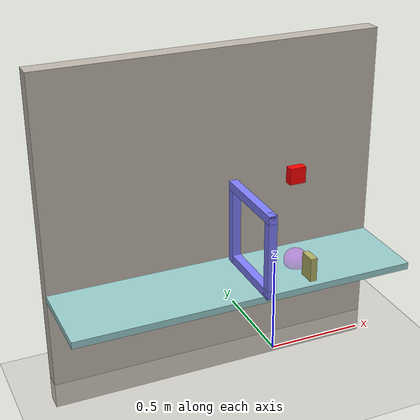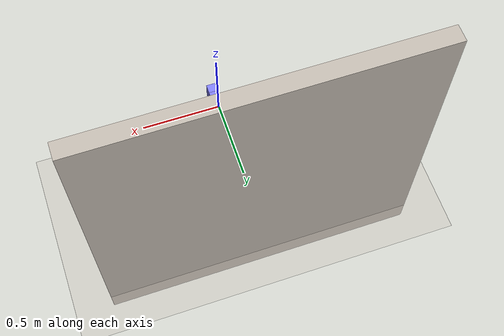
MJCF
<mujoco model="simple_goal_sig_obstacles_scene">
    <compiler angle="radian" meshdir="meshes/" inertiafromgeom="true"/>
    <default>
        <default class="visual">
            <geom contype="0" conaffinity="0" group="2"/>
        </default>
    </default>
    <include file="materials.xml"/>
    <include file="cc_sphere.xml"/>
    <include file="floor.xml"/>
    <include file="simple_goal_sig_obstacles.xml"/>
</mujoco>

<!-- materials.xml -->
<mujocoinclude>
    <asset>
        <texture file="textures/light-wood.png" type="2d" name="tex-light-wood"/>
        <texture file="textures/dark-wood.png" type="2d" name="tex-dark-wood"/>
        <texture file="textures/metal.png" type="2d" name="tex-metal"/>
        <texture file="textures/cream-plaster.png" type="2d" name="tex-cream-plaster"/>
        <texture file="textures/grass.png" type="2d" name="tex-grass"/>
        <material name="light-wood" reflectance="0" texrepeat="15 15" texture="tex-light-wood" texuniform="true"/>
        <material name="dark-wood" reflectance="0" texrepeat="5 5" texture="tex-dark-wood" texuniform="true"/>
        <material name="metal" reflectance="0" texrepeat="5 5" texture="tex-metal" texuniform="true"/>
        <material name="cream-plaster" reflectance="0" texrepeat="5 5" texture="tex-cream-plaster" texuniform="true"/>
        <material name="grass" reflectance="0" texrepeat="0.2 0.2" texture="tex-grass" texuniform="true"/>
    </asset>
</mujocoinclude>

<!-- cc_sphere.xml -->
<mujoco model="cc_sphere">
    <worldbody>
        <body pos="0 0 0" name="cc_sphere">
            <!-- To get the most precise results, the size here should be half of the resolution of the voxelgrid -->
            <geom type="sphere" name="cc_sphere" size="0.005" rgba="1 1 1 0.1"/>
            <joint type="free" name="cc_sphere" damping="0.1"/>
        </body>
    </worldbody>
</mujoco>

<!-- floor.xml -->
<mujoco model="floor">
    <worldbody>
        <body pos="0 0 -0.445" name="floor">
            <geom type="plane" name="floor" size="50 50 0.1"  material="cream-plaster"/>
        </body>
    </worldbody>
</mujoco>

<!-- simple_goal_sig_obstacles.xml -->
<mujoco model="obstacles">
    <worldbody>
        <body name="obstacles" pos="0 0.8 -0.6" euler="0 0 4.7123">
            <body name="wall">
                <geom type="box" name="wall" size="0.05 1 1" pos="0 0 1" material="cream-plaster"/>
            </body>
            <light mode="fixed" pos="0.3 0.2 1.7" dir="-0.25 0.1 -1" diffuse="0.61 0.61 0.6" castshadow="false"/>
            <light mode="fixed" pos="0.3 -0.2 1.7" dir="-0.25 -0.1 -1" diffuse="0.61 0.61 0.6" castshadow="false"/>
            <body name="attach1" pos="0.05 0.5 1.2">
                <geom name="attach1" size="0.02 0.02 0.02" rgba="1.0 0 0 1"/>
                <body name="cover">
                    <geom name="cover" class="visual" type="box" size="0.05 0.05 0.05" rgba="1 0 0 1"/>
                </body>
            </body>
            <body name="table" pos="0.1 0 0.72">
                <geom type="box" name="table" pos="0.19 0 0" size="0.25 1.0 0.02" rgba="0.6 0.8 0.8 1"/>
                <geom type="box" name="right_arm_blocker" pos="0.35 0.4 0.09" size="0.05 0.02 0.07" rgba="0.7 0.7 0.4 1"/>
                <body name="goal" pos="0.14 0.4 0.05">
                    <geom name="goal" class="visual" type="sphere" size="0.07" pos="0.045 0 0" rgba="1 0 1 0.3"/>
                </body>
                <body name="loop1" pos="0.23 0.1 0.27">
                    <geom type="box" name="loop1_top" pos="0 0 0.225" size="0.25 0.025 0.025" rgba="0.5 0.5 1.0 1"/>
                    <geom type="box" name="loop1_bottom" pos="0 0 -0.225" size="0.25 0.025 0.025" rgba="0.5 0.5 1.0 1"/>
                    <geom type="box" name="loop1_front" pos="0.225 0 0.0" size="0.025 0.025 0.25" rgba="0.5 0.5 1.0 1"/>
                    <geom type="box" name="loop1_back" pos="-0.225 0 0.0" size="0.025 0.025 0.25" rgba="0.5 0.5 1.0 1"/>
                </body>
            </body>
        </body>
    </worldbody>
</mujoco>
